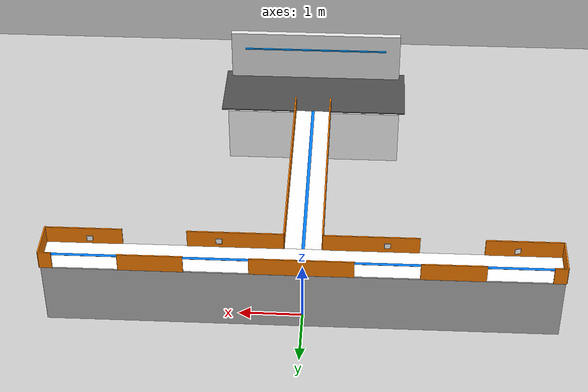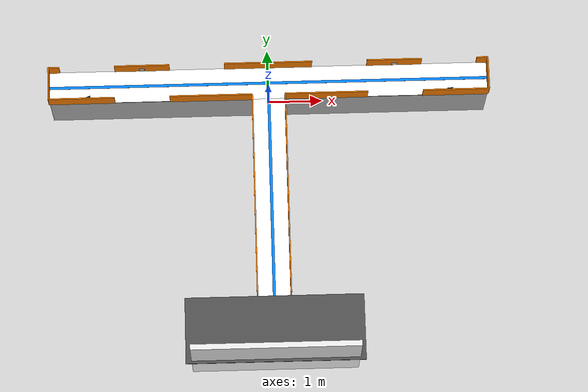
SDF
<sdf version="1.9">
 <world name="hema_t_junction_6_star_final">
  <physics name="1ms" type="ignored">
   <max_step_size>0.001</max_step_size>
   <real_time_factor>1</real_time_factor>
   <real_time_update_rate>1000</real_time_update_rate>
  </physics>
  <plugin name="ignition::gazebo::systems::Physics" filename="ignition-gazebo-physics-system"/>
  <plugin name="ignition::gazebo::systems::SceneBroadcaster" filename="ignition-gazebo-scene-broadcaster-system"/>
  <plugin name="ignition::gazebo::systems::UserCommands" filename="ignition-gazebo-user-commands-system"/>
  <plugin name="ignition::gazebo::systems::Sensors" filename="ignition-gazebo-sensors-system"/>
  <gravity>0 0 -9.8</gravity>
  <magnetic_field>6e-06 2.3e-05 -4.2e-05</magnetic_field>
  <atmosphere type="adiabatic"/>
  <scene><ambient>0.4 0.4 0.4 1</ambient><background>0.7 0.7 0.7 1</background><shadows>true</shadows></scene>
  <model name="ground">
   <static>true</static>
   <link name="l">
    <visual name="v">
     <geometry><plane><normal>0 0 1</normal><size>1 1</size></plane></geometry>
     <material><ambient>0.8 0.8 0.8 1</ambient><diffuse>0.8 0.8 0.8 1</diffuse></material>
    </visual>
    <inertial>
     <mass>1</mass>
     <inertia><ixx>1</ixx><ixy>0</ixy><ixz>0</ixz><iyy>1</iyy><iyz>0</iyz><izz>1</izz></inertia>
    </inertial>
   </link>
  </model>
  <include><uri>model://kitchen_hub</uri><name>k</name><pose>0 -4.6 0 0 -0 0</pose></include>
  <model name="track_stem">
   <static>true</static>
   <pose>0 -2.15 1.1 0 -0 0</pose>
   <link name="l">
    <visual name="v">
     <geometry><box><size>0.6 3.7 0.02</size></box></geometry>
     <material><ambient>1 1 1 1</ambient><diffuse>1 1 1 1</diffuse></material>
    </visual>
    <visual name="ped">
     <pose>0 0 -0.55 0 0 0</pose>
     <geometry><box><size>0.5 3.7 1.1</size></box></geometry>
     <material><ambient>0.7 0.7 0.7 1</ambient><diffuse>0.7 0.7 0.7 1</diffuse></material>
    </visual>
    <visual name="a">
     <pose>0 0 0.01 0 0 0</pose>
     <geometry><box><size>0.05 3.7 0.005</size></box></geometry>
     <material><ambient>0 0.5 1 1</ambient><diffuse>0 0.5 1 1</diffuse><emissive>0 0.2 1 1</emissive></material>
    </visual>
    <inertial>
     <mass>1</mass>
     <inertia><ixx>1</ixx><ixy>0</ixy><ixz>0</ixz><iyy>1</iyy><iyz>0</iyz><izz>1</izz></inertia>
    </inertial>
   </link>
  </model>
  <model name="track_crossbar">
   <static>true</static>
   <pose>0 0 1.1 0 -0 0</pose>
   <link name="l">
    <visual name="v">
     <geometry><box><size>8 0.6 0.02</size></box></geometry>
     <material><ambient>1 1 1 1</ambient><diffuse>1 1 1 1</diffuse></material>
    </visual>
    <visual name="ped">
     <pose>0 0 -0.55 0 0 0</pose>
     <geometry><box><size>8 0.5 1.1</size></box></geometry>
     <material><ambient>0.7 0.7 0.7 1</ambient><diffuse>0.7 0.7 0.7 1</diffuse></material>
    </visual>
    <visual name="a">
     <pose>0 0 0.01 0 0 0</pose>
     <geometry><box><size>8 0.05 0.005</size></box></geometry>
     <material><ambient>0 0.5 1 1</ambient><diffuse>0 0.5 1 1</diffuse><emissive>0 0.2 1 1</emissive></material>
    </visual>
    <inertial>
     <mass>1</mass>
     <inertia><ixx>1</ixx><ixy>0</ixy><ixz>0</ixz><iyy>1</iyy><iyz>0</iyz><izz>1</izz></inertia>
    </inertial>
   </link>
  </model>
  <model name="sw_l">
   <static>true</static>
   <pose>-0.3 -2.15 1.25 0 -0 0</pose>
   <link name="l">
    <visual name="v">
     <geometry><box><size>0.02 3.7 0.3</size></box></geometry>
     <material><ambient>0.8 0.4 0 1</ambient><diffuse>1 0.5 0 1</diffuse></material>
    </visual>
    <inertial>
     <mass>1</mass>
     <inertia><ixx>1</ixx><ixy>0</ixy><ixz>0</ixz><iyy>1</iyy><iyz>0</iyz><izz>1</izz></inertia>
    </inertial>
   </link>
  </model>
  <model name="sw_r">
   <static>true</static>
   <pose>0.3 -2.15 1.25 0 -0 0</pose>
   <link name="l">
    <visual name="v">
     <geometry><box><size>0.02 3.7 0.3</size></box></geometry>
     <material><ambient>0.8 0.4 0 1</ambient><diffuse>1 0.5 0 1</diffuse></material>
    </visual>
    <inertial>
     <mass>1</mass>
     <inertia><ixx>1</ixx><ixy>0</ixy><ixz>0</ixz><iyy>1</iyy><iyz>0</iyz><izz>1</izz></inertia>
    </inertial>
   </link>
  </model>
  <model name="tw1">
   <static>true</static>
   <pose>-3.9 0.3 1.25 0 -0 0</pose>
   <link name="l">
    <visual name="v">
     <geometry><box><size>0.2 0.02 0.3</size></box></geometry>
     <material><ambient>1 0.5 0 1</ambient><diffuse>1 0.5 0 1</diffuse></material>
    </visual>
    <inertial>
     <mass>1</mass>
     <inertia><ixx>1</ixx><ixy>0</ixy><ixz>0</ixz><iyy>1</iyy><iyz>0</iyz><izz>1</izz></inertia>
    </inertial>
   </link>
  </model>
  <model name="tw2">
   <static>true</static>
   <pose>-2.3 0.3 1.25 0 -0 0</pose>
   <link name="l">
    <visual name="v">
     <geometry><box><size>1 0.02 0.3</size></box></geometry>
     <material><ambient>1 0.5 0 1</ambient><diffuse>1 0.5 0 1</diffuse></material>
    </visual>
    <inertial>
     <mass>1</mass>
     <inertia><ixx>1</ixx><ixy>0</ixy><ixz>0</ixz><iyy>1</iyy><iyz>0</iyz><izz>1</izz></inertia>
    </inertial>
   </link>
  </model>
  <model name="tw3">
   <static>true</static>
   <pose>0 0.3 1.25 0 -0 0</pose>
   <link name="l">
    <visual name="v">
     <geometry><box><size>1.6 0.02 0.3</size></box></geometry>
     <material><ambient>1 0.5 0 1</ambient><diffuse>1 0.5 0 1</diffuse></material>
    </visual>
    <inertial>
     <mass>1</mass>
     <inertia><ixx>1</ixx><ixy>0</ixy><ixz>0</ixz><iyy>1</iyy><iyz>0</iyz><izz>1</izz></inertia>
    </inertial>
   </link>
  </model>
  <model name="tw4">
   <static>true</static>
   <pose>2.3 0.3 1.25 0 -0 0</pose>
   <link name="l">
    <visual name="v">
     <geometry><box><size>1 0.02 0.3</size></box></geometry>
     <material><ambient>1 0.5 0 1</ambient><diffuse>1 0.5 0 1</diffuse></material>
    </visual>
    <inertial>
     <mass>1</mass>
     <inertia><ixx>1</ixx><ixy>0</ixy><ixz>0</ixz><iyy>1</iyy><iyz>0</iyz><izz>1</izz></inertia>
    </inertial>
   </link>
  </model>
  <model name="tw5">
   <static>true</static>
   <pose>3.9 0.3 1.25 0 -0 0</pose>
   <link name="l">
    <visual name="v">
     <geometry><box><size>0.2 0.02 0.3</size></box></geometry>
     <material><ambient>1 0.5 0 1</ambient><diffuse>1 0.5 0 1</diffuse></material>
    </visual>
    <inertial>
     <mass>1</mass>
     <inertia><ixx>1</ixx><ixy>0</ixy><ixz>0</ixz><iyy>1</iyy><iyz>0</iyz><izz>1</izz></inertia>
    </inertial>
   </link>
  </model>
  <model name="bw1">
   <static>true</static>
   <pose>-3.4 -0.3 1.25 0 -0 0</pose>
   <link name="l">
    <visual name="v">
     <geometry><box><size>1.2 0.02 0.3</size></box></geometry>
     <material><ambient>1 0.5 0 1</ambient><diffuse>1 0.5 0 1</diffuse></material>
    </visual>
    <inertial>
     <mass>1</mass>
     <inertia><ixx>1</ixx><ixy>0</ixy><ixz>0</ixz><iyy>1</iyy><iyz>0</iyz><izz>1</izz></inertia>
    </inertial>
   </link>
  </model>
  <model name="bw2">
   <static>true</static>
   <pose>-1.05 -0.3 1.25 0 -0 0</pose>
   <link name="l">
    <visual name="v">
     <geometry><box><size>1.5 0.02 0.3</size></box></geometry>
     <material><ambient>1 0.5 0 1</ambient><diffuse>1 0.5 0 1</diffuse></material>
    </visual>
    <inertial>
     <mass>1</mass>
     <inertia><ixx>1</ixx><ixy>0</ixy><ixz>0</ixz><iyy>1</iyy><iyz>0</iyz><izz>1</izz></inertia>
    </inertial>
   </link>
  </model>
  <model name="bw3">
   <static>true</static>
   <pose>1.05 -0.3 1.25 0 -0 0</pose>
   <link name="l">
    <visual name="v">
     <geometry><box><size>1.5 0.02 0.3</size></box></geometry>
     <material><ambient>1 0.5 0 1</ambient><diffuse>1 0.5 0 1</diffuse></material>
    </visual>
    <inertial>
     <mass>1</mass>
     <inertia><ixx>1</ixx><ixy>0</ixy><ixz>0</ixz><iyy>1</iyy><iyz>0</iyz><izz>1</izz></inertia>
    </inertial>
   </link>
  </model>
  <model name="bw4">
   <static>true</static>
   <pose>3.4 -0.3 1.25 0 -0 0</pose>
   <link name="l">
    <visual name="v">
     <geometry><box><size>1.2 0.02 0.3</size></box></geometry>
     <material><ambient>1 0.5 0 1</ambient><diffuse>1 0.5 0 1</diffuse></material>
    </visual>
    <inertial>
     <mass>1</mass>
     <inertia><ixx>1</ixx><ixy>0</ixy><ixz>0</ixz><iyy>1</iyy><iyz>0</iyz><izz>1</izz></inertia>
    </inertial>
   </link>
  </model>
  <model name="el">
   <static>true</static>
   <pose>-4 0 1.25 0 -0 0</pose>
   <link name="l">
    <visual name="v">
     <geometry><box><size>0.02 0.6 0.3</size></box></geometry>
     <material><ambient>1 0.5 0 1</ambient><diffuse>1 0.5 0 1</diffuse></material>
    </visual>
    <inertial>
     <mass>1</mass>
     <inertia><ixx>1</ixx><ixy>0</ixy><ixz>0</ixz><iyy>1</iyy><iyz>0</iyz><izz>1</izz></inertia>
    </inertial>
   </link>
  </model>
  <model name="er">
   <static>true</static>
   <pose>4 0 1.25 0 -0 0</pose>
   <link name="l">
    <visual name="v">
     <geometry><box><size>0.02 0.6 0.3</size></box></geometry>
     <material><ambient>1 0.5 0 1</ambient><diffuse>1 0.5 0 1</diffuse></material>
    </visual>
    <inertial>
     <mass>1</mass>
     <inertia><ixx>1</ixx><ixy>0</ixy><ixz>0</ixz><iyy>1</iyy><iyz>0</iyz><izz>1</izz></inertia>
    </inertial>
   </link>
  </model>
  <include>
   <uri>model://qr_marker_1</uri>
   <name>q1</name>
   <pose>-3.29282 -0.240871 1.25 0 -0 0.335309</pose>
  </include>
  <include><uri>model://qr_marker_2</uri><name>q2</name><pose>-2.3 0.272367 1.25 0 -0 3.14159</pose></include>
  <include><uri>model://qr_marker_3</uri><name>q3</name><pose>-1.3 -0.268975 1.25 0 -0 0</pose></include>
  <include><uri>model://qr_marker_4</uri><name>q4</name><pose>1.3 -0.258756 1.25 0 -0 0</pose></include>
  <include><uri>model://qr_marker_5</uri><name>q5</name><pose>2.3 0.262595 1.25 0 -0 3.14159</pose></include>
  <include><uri>model://qr_marker_6</uri><name>q6</name><pose>3.3 -0.238684 1.25 0 -0 0</pose></include>
  <light name="sun" type="directional">
   <pose>0 0 10 0 -0 0</pose>
   <cast_shadows>false</cast_shadows>
   <intensity>1</intensity>
   <direction>-0.5 0.1 -0.9</direction>
   <diffuse>1 1 1 1</diffuse>
   <specular>1 1 1 1</specular>
   <attenuation><range>10</range><linear>1</linear><constant>1</constant><quadratic>0</quadratic></attenuation>
   <spot><inner_angle>0</inner_angle><outer_angle>0</outer_angle><falloff>0</falloff></spot>
  </light>
 </world>
</sdf>

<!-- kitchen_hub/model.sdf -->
<sdf version="1.8">
  <model name="kitchen_hub">
    <static>true</static>
    <link name="link">
      <!-- Main Base (Pure White) -->
      <visual name="base_visual">
        <pose>0 0 0.5 0 0 0</pose>
        <geometry>
          <box><size>3.0 1.0 1.0</size></box>
        </geometry>
        <material>
          <ambient>1 1 1 1</ambient>
          <diffuse>1 1 1 1</diffuse>
          <specular>0.5 0.5 0.5 1</specular>
        </material>
      </visual>
      <collision name="base_collision">
        <pose>0 0 0.5 0 0 0</pose>
        <geometry>
          <box><size>3.0 1.0 1.0</size></box>
        </geometry>
      </collision>

      <!-- Top Counter (Brushed Silver/Dark Gray) -->
      <visual name="top_counter">
        <pose>0 0 1.1 0 0 0</pose>
        <geometry>
          <box><size>3.2 1.2 0.02</size></box>
        </geometry>
        <material>
          <ambient>0.3 0.3 0.3 1</ambient>
          <diffuse>0.3 0.3 0.3 1</diffuse>
          <specular>1 1 1 1</specular>
        </material>
      </visual>

      <!-- Back Wall (White) -->
      <visual name="back_wall">
        <pose>0 -0.5 1.5 0 0 0</pose>
        <geometry>
          <box><size>3.0 0.1 1.0</size></box>
        </geometry>
        <material>
          <ambient>0.9 0.9 0.9 1</ambient>
          <diffuse>0.9 0.9 0.9 1</diffuse>
        </material>
      </visual>

      <!-- Tech Accent (Blue Neon) -->
      <visual name="tech_accent">
        <pose>0 -0.45 1.7 0 0 0</pose>
        <geometry>
          <box><size>2.5 0.05 0.02</size></box>
        </geometry>
        <material>
          <ambient>0 0.6 1 1</ambient>
          <diffuse>0 0.6 1 1</diffuse>
          <emissive>0 0.3 0.5 1</emissive>
        </material>
      </visual>
    </link>
  </model>
</sdf>

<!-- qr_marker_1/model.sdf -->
<sdf version="1.8">
  <model name="qr_marker_1">
    <static>true</static>
    <link name="link">
      <visual name="base">
        <geometry><box><size>0.1 0.005 0.1</size></box></geometry>
        <material><ambient>0 0 0 1</ambient><diffuse>0 0 0 1</diffuse></material>
      </visual>
      <visual name="pattern">
        <pose>0 0.003 0 0 0 0</pose>
        <geometry><box><size>0.09 0.001 0.09</size></box></geometry>
        <material>
          <diffuse>1 1 1 1</diffuse>
          <pbr>
            <metal>
              <albedo_map>textures/table_1.png</albedo_map>
            </metal>
          </pbr>
        </material>
      </visual>
    </link>
  </model>
</sdf>

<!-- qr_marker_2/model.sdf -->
<sdf version="1.8">
  <model name="qr_marker_2">
    <static>true</static>
    <link name="link">
      <visual name="base">
        <geometry><box><size>0.1 0.005 0.1</size></box></geometry>
        <material><ambient>0 0 0 1</ambient><diffuse>0 0 0 1</diffuse></material>
      </visual>
      <visual name="pattern">
        <pose>0 0.003 0 0 0 0</pose>
        <geometry><box><size>0.09 0.001 0.09</size></box></geometry>
        <material>
          <diffuse>1 1 1 1</diffuse>
          <pbr>
            <metal>
              <albedo_map>textures/table_2.png</albedo_map>
            </metal>
          </pbr>
        </material>
      </visual>
    </link>
  </model>
</sdf>

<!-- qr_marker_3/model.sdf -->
<sdf version="1.8">
  <model name="qr_marker_3">
    <static>true</static>
    <link name="link">
      <visual name="base">
        <geometry><box><size>0.1 0.005 0.1</size></box></geometry>
        <material><ambient>0 0 0 1</ambient><diffuse>0 0 0 1</diffuse></material>
      </visual>
      <visual name="pattern">
        <pose>0 0.003 0 0 0 0</pose>
        <geometry><box><size>0.09 0.001 0.09</size></box></geometry>
        <material>
          <diffuse>1 1 1 1</diffuse>
          <pbr>
            <metal>
              <albedo_map>textures/table_3.png</albedo_map>
            </metal>
          </pbr>
        </material>
      </visual>
    </link>
  </model>
</sdf>

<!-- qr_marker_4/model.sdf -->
<sdf version="1.8">
  <model name="qr_marker_4">
    <static>true</static>
    <link name="link">
      <visual name="base">
        <geometry><box><size>0.1 0.005 0.1</size></box></geometry>
        <material><ambient>0 0 0 1</ambient><diffuse>0 0 0 1</diffuse></material>
      </visual>
      <visual name="pattern">
        <pose>0 0.003 0 0 0 0</pose>
        <geometry><box><size>0.09 0.001 0.09</size></box></geometry>
        <material>
          <diffuse>1 1 1 1</diffuse>
          <pbr>
            <metal>
              <albedo_map>textures/table_4.png</albedo_map>
            </metal>
          </pbr>
        </material>
      </visual>
    </link>
  </model>
</sdf>

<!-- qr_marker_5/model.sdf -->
<sdf version="1.8">
  <model name="qr_marker_5">
    <static>true</static>
    <link name="link">
      <visual name="base">
        <geometry><box><size>0.1 0.005 0.1</size></box></geometry>
        <material><ambient>0 0 0 1</ambient><diffuse>0 0 0 1</diffuse></material>
      </visual>
      <visual name="pattern">
        <pose>0 0.003 0 0 0 0</pose>
        <geometry><box><size>0.09 0.001 0.09</size></box></geometry>
        <material>
          <diffuse>1 1 1 1</diffuse>
          <pbr>
            <metal>
              <albedo_map>textures/table_5.png</albedo_map>
            </metal>
          </pbr>
        </material>
      </visual>
    </link>
  </model>
</sdf>

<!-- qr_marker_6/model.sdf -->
<sdf version="1.8">
  <model name="qr_marker_6">
    <static>true</static>
    <link name="link">
      <visual name="base">
        <geometry><box><size>0.1 0.005 0.1</size></box></geometry>
        <material><ambient>0 0 0 1</ambient><diffuse>0 0 0 1</diffuse></material>
      </visual>
      <visual name="pattern">
        <pose>0 0.003 0 0 0 0</pose>
        <geometry><box><size>0.09 0.001 0.09</size></box></geometry>
        <material>
          <diffuse>1 1 1 1</diffuse>
          <pbr>
            <metal>
              <albedo_map>textures/table_6.png</albedo_map>
            </metal>
          </pbr>
        </material>
      </visual>
    </link>
  </model>
</sdf>
